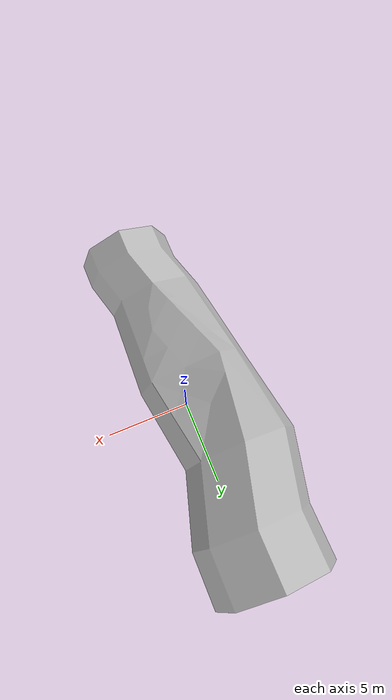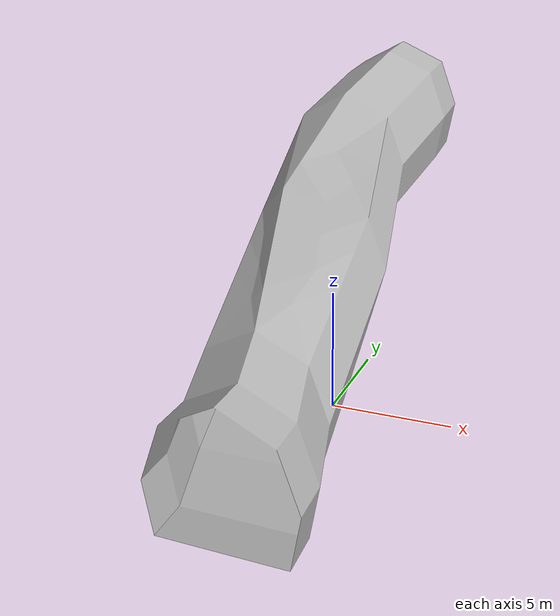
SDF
<?xml version="1.0" ?>
<sdf version="1.6">
  <model name="cave_tile_ramp2">
    <static>true</static>
    <link name="link">
      <pose>0 0 0 1.570796 0 0</pose>
      <collision name="collision">
        <geometry>
          <mesh>
            <uri>model://cave_tile_ramp2/meshes/cave_tile_ramp2.obj</uri>
          </mesh>
        </geometry>
      </collision>
      <visual name="visual">
        <geometry>
          <mesh>
            <uri>model://cave_tile_ramp2/meshes/cave_tile_ramp2.obj</uri>
          </mesh>
        </geometry>
      </visual>
    </link>
  </model>
</sdf>
